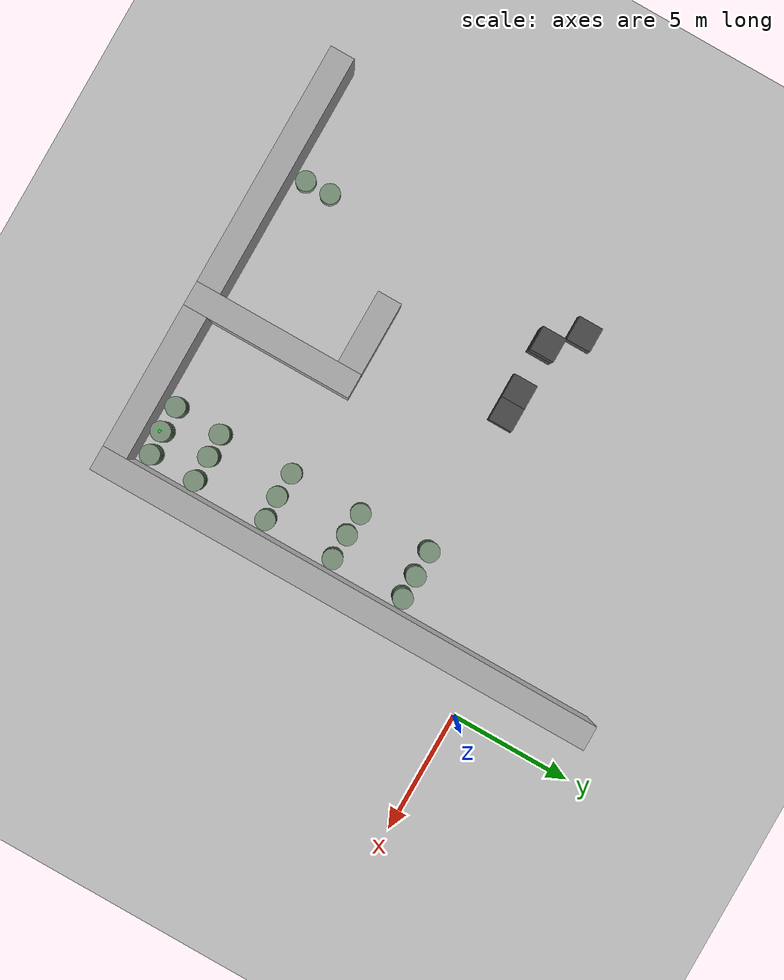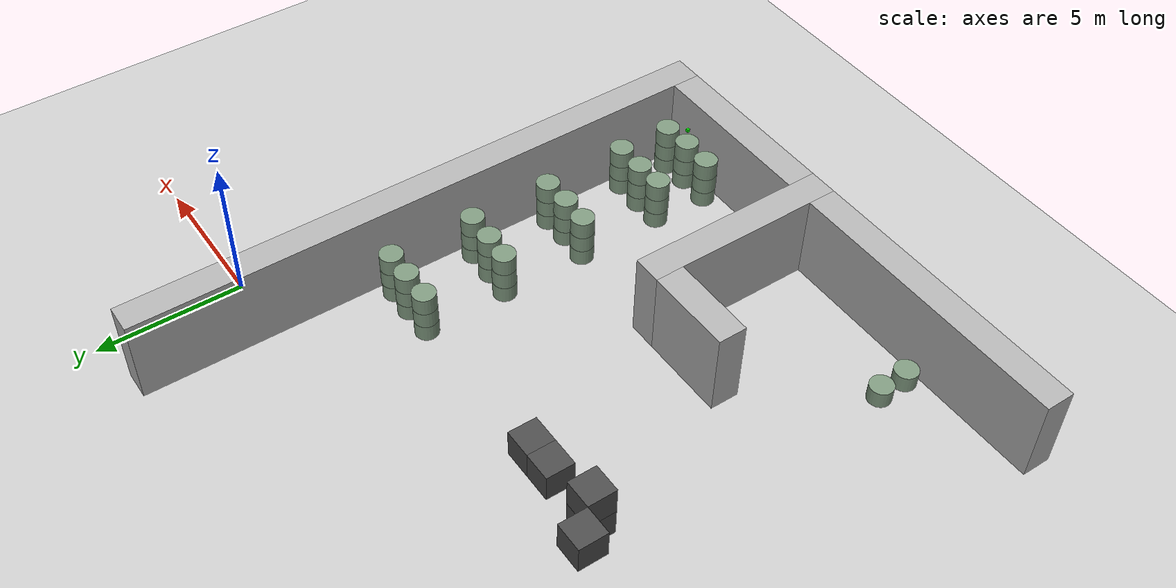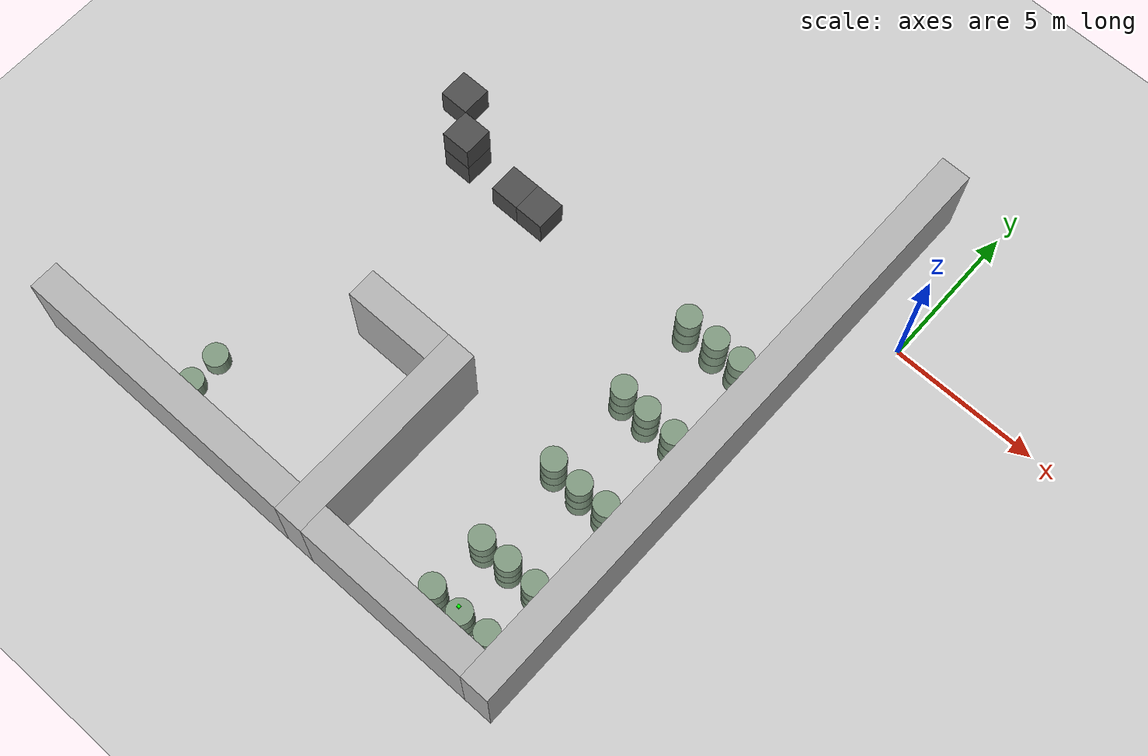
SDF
<sdf version="1.6">
 <world name="default">
  <model name="wall_2">
   <pose frame="sim_world">-9.0 -13.0 1.5 0 0 0</pose>
   <static>True</static>
   <link name="wall_2_link">
    <inertial>
     <mass>100</mass>
     <inertia>
      <ixx>0.166667</ixx>
      <ixy>0</ixy>
      <ixz>0</ixz>
      <iyy>0.166667</iyy>
      <iyz>0</iyz>
      <izz>0.166667</izz>
     </inertia>
    </inertial>
    <collision name="wall_2_collision">
     <geometry><box><size>1.0 7.0 3.0</size></box></geometry>
     <max_contacts>100</max_contacts>
    </collision>
    <visual name="wall_2_visual">
     <geometry><box><size>1.0 7.0 3.0</size></box></geometry>
     <material><ambient>0.7 0.7 0.7 1</ambient><diffuse>0.7 0.7 0.7 1</diffuse></material>
    </visual>
   </link>
  </model>
  <model name="wall_4">
   <pose frame="sim_world">-2.0 -6.0 1.5 0 0 0</pose>
   <static>True</static>
   <link name="wall_4_link">
    <inertial>
     <mass>100</mass>
     <inertia>
      <ixx>0.166667</ixx>
      <ixy>0</ixy>
      <ixz>0</ixz>
      <iyy>0.166667</iyy>
      <iyz>0</iyz>
      <izz>0.166667</izz>
     </inertia>
    </inertial>
    <collision name="wall_4_collision">
     <geometry><box><size>1.0 21.0 3.0</size></box></geometry>
     <max_contacts>100</max_contacts>
    </collision>
    <visual name="wall_4_visual">
     <geometry><box><size>1.0 21.0 3.0</size></box></geometry>
     <material><ambient>0.7 0.7 0.7 1</ambient><diffuse>0.7 0.7 0.7 1</diffuse></material>
    </visual>
   </link>
  </model>
  <model name="wall_5">
   <pose frame="sim_world">-14.5 -16.0 1.5 0 0 0</pose>
   <static>True</static>
   <link name="wall_5_link">
    <inertial>
     <mass>100</mass>
     <inertia>
      <ixx>0.166667</ixx>
      <ixy>0</ixy>
      <ixz>0</ixz>
      <iyy>0.166667</iyy>
      <iyz>0</iyz>
      <izz>0.166667</izz>
     </inertia>
    </inertial>
    <collision name="wall_5_collision">
     <geometry><box><size>10.0 1.0 3.0</size></box></geometry>
     <max_contacts>100</max_contacts>
    </collision>
    <visual name="wall_5_visual">
     <geometry><box><size>10.0 1.0 3.0</size></box></geometry>
     <material><ambient>0.7 0.7 0.7 1</ambient><diffuse>0.7 0.7 0.7 1</diffuse></material>
    </visual>
   </link>
  </model>
  <model name="wall_6">
   <pose frame="sim_world">-5.5 -16.0 1.5 0 0 0</pose>
   <static>True</static>
   <link name="wall_6_link">
    <inertial>
     <mass>100</mass>
     <inertia>
      <ixx>0.166667</ixx>
      <ixy>0</ixy>
      <ixz>0</ixz>
      <iyy>0.166667</iyy>
      <iyz>0</iyz>
      <izz>0.166667</izz>
     </inertia>
    </inertial>
    <collision name="wall_6_collision">
     <geometry><box><size>6.0 1.0 3.0</size></box></geometry>
     <max_contacts>100</max_contacts>
    </collision>
    <visual name="wall_6_visual">
     <geometry><box><size>6.0 1.0 3.0</size></box></geometry>
     <material><ambient>0.7 0.7 0.7 1</ambient><diffuse>0.7 0.7 0.7 1</diffuse></material>
    </visual>
   </link>
  </model>
  <model name="wall_8">
   <pose frame="sim_world">-11.0 -10.0 1.5 0 0 0</pose>
   <static>True</static>
   <link name="wall_8_link">
    <inertial>
     <mass>100</mass>
     <inertia>
      <ixx>0.166667</ixx>
      <ixy>0</ixy>
      <ixz>0</ixz>
      <iyy>0.166667</iyy>
      <iyz>0</iyz>
      <izz>0.166667</izz>
     </inertia>
    </inertial>
    <collision name="wall_8_collision">
     <geometry><box><size>3.0 1.0 3.0</size></box></geometry>
     <max_contacts>100</max_contacts>
    </collision>
    <visual name="wall_8_visual">
     <geometry><box><size>3.0 1.0 3.0</size></box></geometry>
     <material><ambient>0.7 0.7 0.7 1</ambient><diffuse>0.7 0.7 0.7 1</diffuse></material>
    </visual>
   </link>
  </model>
  <model name="box_33">
   <pose frame="sim_world">-15.0 -3.0 1.5 0 -0 0</pose>
   <static>True</static>
   <link name="box_33_link">
    <inertial>
     <mass>100</mass>
     <inertia>
      <ixx>0.166667</ixx>
      <ixy>0</ixy>
      <ixz>0</ixz>
      <iyy>0.166667</iyy>
      <iyz>0</iyz>
      <izz>0.166667</izz>
     </inertia>
    </inertial>
    <collision name="box_33_collision">
     <geometry><box><size>1.0 1.0 1.0</size></box></geometry>
     <max_contacts>100</max_contacts>
    </collision>
    <visual name="box_33_visual">
     <geometry><box><size>1.0 1.0 1.0</size></box></geometry>
     <material><ambient>0.3 0.3 0.3 1</ambient><diffuse>0.3 0.3 0.3 1</diffuse></material>
    </visual>
   </link>
  </model>
  <model name="box_40">
   <pose frame="sim_world">-14.0 -4.0 0.5 0 -0 0</pose>
   <static>True</static>
   <link name="box_40_link">
    <inertial>
     <mass>100</mass>
     <inertia>
      <ixx>0.166667</ixx>
      <ixy>0</ixy>
      <ixz>0</ixz>
      <iyy>0.166667</iyy>
      <iyz>0</iyz>
      <izz>0.166667</izz>
     </inertia>
    </inertial>
    <collision name="box_40_collision">
     <geometry><box><size>1.0 1.0 1.0</size></box></geometry>
     <max_contacts>100</max_contacts>
    </collision>
    <visual name="box_40_visual">
     <geometry><box><size>1.0 1.0 1.0</size></box></geometry>
     <material><ambient>0.3 0.3 0.3 1</ambient><diffuse>0.3 0.3 0.3 1</diffuse></material>
    </visual>
   </link>
  </model>
  <model name="box_41">
   <pose frame="sim_world">-14.0 -4.0 1.5 0 -0 0</pose>
   <static>True</static>
   <link name="box_41_link">
    <inertial>
     <mass>100</mass>
     <inertia>
      <ixx>0.166667</ixx>
      <ixy>0</ixy>
      <ixz>0</ixz>
      <iyy>0.166667</iyy>
      <iyz>0</iyz>
      <izz>0.166667</izz>
     </inertia>
    </inertial>
    <collision name="box_41_collision">
     <geometry><box><size>1.0 1.0 1.0</size></box></geometry>
     <max_contacts>100</max_contacts>
    </collision>
    <visual name="box_41_visual">
     <geometry><box><size>1.0 1.0 1.0</size></box></geometry>
     <material><ambient>0.3 0.3 0.3 1</ambient><diffuse>0.3 0.3 0.3 1</diffuse></material>
    </visual>
   </link>
  </model>
  <model name="box_50">
   <pose frame="sim_world">-12.0 -4.0 0.5 0 -0 0</pose>
   <static>True</static>
   <link name="box_50_link">
    <inertial>
     <mass>100</mass>
     <inertia>
      <ixx>0.166667</ixx>
      <ixy>0</ixy>
      <ixz>0</ixz>
      <iyy>0.166667</iyy>
      <iyz>0</iyz>
      <izz>0.166667</izz>
     </inertia>
    </inertial>
    <collision name="box_50_collision">
     <geometry><box><size>1.0 1.0 1.0</size></box></geometry>
     <max_contacts>100</max_contacts>
    </collision>
    <visual name="box_50_visual">
     <geometry><box><size>1.0 1.0 1.0</size></box></geometry>
     <material><ambient>0.3 0.3 0.3 1</ambient><diffuse>0.3 0.3 0.3 1</diffuse></material>
    </visual>
   </link>
  </model>
  <model name="box_55">
   <pose frame="sim_world">-11.0 -4.0 0.5 0 -0 0</pose>
   <static>True</static>
   <link name="box_55_link">
    <inertial>
     <mass>100</mass>
     <inertia>
      <ixx>0.166667</ixx>
      <ixy>0</ixy>
      <ixz>0</ixz>
      <iyy>0.166667</iyy>
      <iyz>0</iyz>
      <izz>0.166667</izz>
     </inertia>
    </inertial>
    <collision name="box_55_collision">
     <geometry><box><size>1.0 1.0 1.0</size></box></geometry>
     <max_contacts>100</max_contacts>
    </collision>
    <visual name="box_55_visual">
     <geometry><box><size>1.0 1.0 1.0</size></box></geometry>
     <material><ambient>0.3 0.3 0.3 1</ambient><diffuse>0.3 0.3 0.3 1</diffuse></material>
    </visual>
   </link>
  </model>
  <model name="cylinder_39">
   <pose frame="sim_world">-14.9642279872 -15.0391567686 0.3 0 -0 0</pose>
   <static>True</static>
   <link name="cylinder_39_link">
    <inertial>
     <mass>100</mass>
     <inertia><ixx>0.145833</ixx><ixy>0</ixy><ixz>0</ixz><iyy>0.145833</iyy><iyz>0</iyz><izz>0.125</izz></inertia>
    </inertial>
    <collision name="cylinder_39_collision">
     <geometry><cylinder><length>0.6</length><radius>0.4</radius></cylinder></geometry>
     <max_contacts>100</max_contacts>
    </collision>
    <visual name="cylinder_39_visual">
     <geometry><cylinder><length>0.6</length><radius>0.4</radius></cylinder></geometry>
     <material><ambient>0.5 0.6 0.5 1</ambient><diffuse>0.5 0.6 0.5 1</diffuse></material>
    </visual>
   </link>
  </model>
  <model name="cylinder_40">
   <pose frame="sim_world">-14.9992538087 -13.993198677 0.3 0 -0 0</pose>
   <static>True</static>
   <link name="cylinder_40_link">
    <inertial>
     <mass>100</mass>
     <inertia><ixx>0.145833</ixx><ixy>0</ixy><ixz>0</ixz><iyy>0.145833</iyy><iyz>0</iyz><izz>0.125</izz></inertia>
    </inertial>
    <collision name="cylinder_40_collision">
     <geometry><cylinder><length>0.6</length><radius>0.4</radius></cylinder></geometry>
     <max_contacts>100</max_contacts>
    </collision>
    <visual name="cylinder_40_visual">
     <geometry><cylinder><length>0.6</length><radius>0.4</radius></cylinder></geometry>
     <material><ambient>0.5 0.6 0.5 1</ambient><diffuse>0.5 0.6 0.5 1</diffuse></material>
    </visual>
   </link>
  </model>
  <model name="cylinder_54">
   <pose frame="sim_world">-5.03857748417 -15.0002102983 0.3 0 -0 0</pose>
   <static>True</static>
   <link name="cylinder_54_link">
    <inertial>
     <mass>100</mass>
     <inertia><ixx>0.145833</ixx><ixy>0</ixy><ixz>0</ixz><iyy>0.145833</iyy><iyz>0</iyz><izz>0.125</izz></inertia>
    </inertial>
    <collision name="cylinder_54_collision">
     <geometry><cylinder><length>0.6</length><radius>0.4</radius></cylinder></geometry>
     <max_contacts>100</max_contacts>
    </collision>
    <visual name="cylinder_54_visual">
     <geometry><cylinder><length>0.6</length><radius>0.4</radius></cylinder></geometry>
     <material><ambient>0.5 0.6 0.5 1</ambient><diffuse>0.5 0.6 0.5 1</diffuse></material>
    </visual>
   </link>
  </model>
  <model name="cylinder_55">
   <pose frame="sim_world">-5.05000649668 -15.0002626581 0.9 0 -0 0</pose>
   <static>True</static>
   <link name="cylinder_55_link">
    <inertial>
     <mass>100</mass>
     <inertia><ixx>0.145833</ixx><ixy>0</ixy><ixz>0</ixz><iyy>0.145833</iyy><iyz>0</iyz><izz>0.125</izz></inertia>
    </inertial>
    <collision name="cylinder_55_collision">
     <geometry><cylinder><length>0.6</length><radius>0.4</radius></cylinder></geometry>
     <max_contacts>100</max_contacts>
    </collision>
    <visual name="cylinder_55_visual">
     <geometry><cylinder><length>0.6</length><radius>0.4</radius></cylinder></geometry>
     <material><ambient>0.5 0.6 0.5 1</ambient><diffuse>0.5 0.6 0.5 1</diffuse></material>
    </visual>
   </link>
  </model>
  <model name="cylinder_56">
   <pose frame="sim_world">-5.04231013674 -14.9907757443 1.5 0 -0 0</pose>
   <static>True</static>
   <link name="cylinder_56_link">
    <inertial>
     <mass>100</mass>
     <inertia><ixx>0.145833</ixx><ixy>0</ixy><ixz>0</ixz><iyy>0.145833</iyy><iyz>0</iyz><izz>0.125</izz></inertia>
    </inertial>
    <collision name="cylinder_56_collision">
     <geometry><cylinder><length>0.6</length><radius>0.4</radius></cylinder></geometry>
     <max_contacts>100</max_contacts>
    </collision>
    <visual name="cylinder_56_visual">
     <geometry><cylinder><length>0.6</length><radius>0.4</radius></cylinder></geometry>
     <material><ambient>0.5 0.6 0.5 1</ambient><diffuse>0.5 0.6 0.5 1</diffuse></material>
    </visual>
   </link>
  </model>
  <model name="cylinder_57">
   <pose frame="sim_world">-4.96721055295 -13.0388129015 0.3 0 -0 0</pose>
   <static>True</static>
   <link name="cylinder_57_link">
    <inertial>
     <mass>100</mass>
     <inertia><ixx>0.145833</ixx><ixy>0</ixy><ixz>0</ixz><iyy>0.145833</iyy><iyz>0</iyz><izz>0.125</izz></inertia>
    </inertial>
    <collision name="cylinder_57_collision">
     <geometry><cylinder><length>0.6</length><radius>0.4</radius></cylinder></geometry>
     <max_contacts>100</max_contacts>
    </collision>
    <visual name="cylinder_57_visual">
     <geometry><cylinder><length>0.6</length><radius>0.4</radius></cylinder></geometry>
     <material><ambient>0.5 0.6 0.5 1</ambient><diffuse>0.5 0.6 0.5 1</diffuse></material>
    </visual>
   </link>
  </model>
  <model name="cylinder_58">
   <pose frame="sim_world">-4.96621971312 -13.0462987798 0.9 0 -0 0</pose>
   <static>True</static>
   <link name="cylinder_58_link">
    <inertial>
     <mass>100</mass>
     <inertia><ixx>0.145833</ixx><ixy>0</ixy><ixz>0</ixz><iyy>0.145833</iyy><iyz>0</iyz><izz>0.125</izz></inertia>
    </inertial>
    <collision name="cylinder_58_collision">
     <geometry><cylinder><length>0.6</length><radius>0.4</radius></cylinder></geometry>
     <max_contacts>100</max_contacts>
    </collision>
    <visual name="cylinder_58_visual">
     <geometry><cylinder><length>0.6</length><radius>0.4</radius></cylinder></geometry>
     <material><ambient>0.5 0.6 0.5 1</ambient><diffuse>0.5 0.6 0.5 1</diffuse></material>
    </visual>
   </link>
  </model>
  <model name="cylinder_59">
   <pose frame="sim_world">-4.96397313096 -13.047413527 1.5 0 -0 0</pose>
   <static>True</static>
   <link name="cylinder_59_link">
    <inertial>
     <mass>100</mass>
     <inertia><ixx>0.145833</ixx><ixy>0</ixy><ixz>0</ixz><iyy>0.145833</iyy><iyz>0</iyz><izz>0.125</izz></inertia>
    </inertial>
    <collision name="cylinder_59_collision">
     <geometry><cylinder><length>0.6</length><radius>0.4</radius></cylinder></geometry>
     <max_contacts>100</max_contacts>
    </collision>
    <visual name="cylinder_59_visual">
     <geometry><cylinder><length>0.6</length><radius>0.4</radius></cylinder></geometry>
     <material><ambient>0.5 0.6 0.5 1</ambient><diffuse>0.5 0.6 0.5 1</diffuse></material>
    </visual>
   </link>
  </model>
  <model name="cylinder_60">
   <pose frame="sim_world">-5.0161968922 -9.96388049397 0.3 0 -0 0</pose>
   <static>True</static>
   <link name="cylinder_60_link">
    <inertial>
     <mass>100</mass>
     <inertia><ixx>0.145833</ixx><ixy>0</ixy><ixz>0</ixz><iyy>0.145833</iyy><iyz>0</iyz><izz>0.125</izz></inertia>
    </inertial>
    <collision name="cylinder_60_collision">
     <geometry><cylinder><length>0.6</length><radius>0.4</radius></cylinder></geometry>
     <max_contacts>100</max_contacts>
    </collision>
    <visual name="cylinder_60_visual">
     <geometry><cylinder><length>0.6</length><radius>0.4</radius></cylinder></geometry>
     <material><ambient>0.5 0.6 0.5 1</ambient><diffuse>0.5 0.6 0.5 1</diffuse></material>
    </visual>
   </link>
  </model>
  <model name="cylinder_61">
   <pose frame="sim_world">-5.01731107323 -9.96693052548 0.9 0 -0 0</pose>
   <static>True</static>
   <link name="cylinder_61_link">
    <inertial>
     <mass>100</mass>
     <inertia><ixx>0.145833</ixx><ixy>0</ixy><ixz>0</ixz><iyy>0.145833</iyy><iyz>0</iyz><izz>0.125</izz></inertia>
    </inertial>
    <collision name="cylinder_61_collision">
     <geometry><cylinder><length>0.6</length><radius>0.4</radius></cylinder></geometry>
     <max_contacts>100</max_contacts>
    </collision>
    <visual name="cylinder_61_visual">
     <geometry><cylinder><length>0.6</length><radius>0.4</radius></cylinder></geometry>
     <material><ambient>0.5 0.6 0.5 1</ambient><diffuse>0.5 0.6 0.5 1</diffuse></material>
    </visual>
   </link>
  </model>
  <model name="cylinder_62">
   <pose frame="sim_world">-5.02168963032 -9.96337520874 1.5 0 -0 0</pose>
   <static>True</static>
   <link name="cylinder_62_link">
    <inertial>
     <mass>100</mass>
     <inertia><ixx>0.145833</ixx><ixy>0</ixy><ixz>0</ixz><iyy>0.145833</iyy><iyz>0</iyz><izz>0.125</izz></inertia>
    </inertial>
    <collision name="cylinder_62_collision">
     <geometry><cylinder><length>0.6</length><radius>0.4</radius></cylinder></geometry>
     <max_contacts>100</max_contacts>
    </collision>
    <visual name="cylinder_62_visual">
     <geometry><cylinder><length>0.6</length><radius>0.4</radius></cylinder></geometry>
     <material><ambient>0.5 0.6 0.5 1</ambient><diffuse>0.5 0.6 0.5 1</diffuse></material>
    </visual>
   </link>
  </model>
  <model name="cylinder_63">
   <pose frame="sim_world">-4.99879742853 -6.95224258028 0.3 0 -0 0</pose>
   <static>True</static>
   <link name="cylinder_63_link">
    <inertial>
     <mass>100</mass>
     <inertia><ixx>0.145833</ixx><ixy>0</ixy><ixz>0</ixz><iyy>0.145833</iyy><iyz>0</iyz><izz>0.125</izz></inertia>
    </inertial>
    <collision name="cylinder_63_collision">
     <geometry><cylinder><length>0.6</length><radius>0.4</radius></cylinder></geometry>
     <max_contacts>100</max_contacts>
    </collision>
    <visual name="cylinder_63_visual">
     <geometry><cylinder><length>0.6</length><radius>0.4</radius></cylinder></geometry>
     <material><ambient>0.5 0.6 0.5 1</ambient><diffuse>0.5 0.6 0.5 1</diffuse></material>
    </visual>
   </link>
  </model>
  <model name="cylinder_64">
   <pose frame="sim_world">-4.98465139193 -6.95228023507 0.9 0 -0 0</pose>
   <static>True</static>
   <link name="cylinder_64_link">
    <inertial>
     <mass>100</mass>
     <inertia><ixx>0.145833</ixx><ixy>0</ixy><ixz>0</ixz><iyy>0.145833</iyy><iyz>0</iyz><izz>0.125</izz></inertia>
    </inertial>
    <collision name="cylinder_64_collision">
     <geometry><cylinder><length>0.6</length><radius>0.4</radius></cylinder></geometry>
     <max_contacts>100</max_contacts>
    </collision>
    <visual name="cylinder_64_visual">
     <geometry><cylinder><length>0.6</length><radius>0.4</radius></cylinder></geometry>
     <material><ambient>0.5 0.6 0.5 1</ambient><diffuse>0.5 0.6 0.5 1</diffuse></material>
    </visual>
   </link>
  </model>
  <model name="cylinder_65">
   <pose frame="sim_world">-4.98913408012 -6.95434660977 1.5 0 -0 0</pose>
   <static>True</static>
   <link name="cylinder_65_link">
    <inertial>
     <mass>100</mass>
     <inertia><ixx>0.145833</ixx><ixy>0</ixy><ixz>0</ixz><iyy>0.145833</iyy><iyz>0</iyz><izz>0.125</izz></inertia>
    </inertial>
    <collision name="cylinder_65_collision">
     <geometry><cylinder><length>0.6</length><radius>0.4</radius></cylinder></geometry>
     <max_contacts>100</max_contacts>
    </collision>
    <visual name="cylinder_65_visual">
     <geometry><cylinder><length>0.6</length><radius>0.4</radius></cylinder></geometry>
     <material><ambient>0.5 0.6 0.5 1</ambient><diffuse>0.5 0.6 0.5 1</diffuse></material>
    </visual>
   </link>
  </model>
  <model name="cylinder_66">
   <pose frame="sim_world">-5.02812958443 -4.01003041959 0.3 0 -0 0</pose>
   <static>True</static>
   <link name="cylinder_66_link">
    <inertial>
     <mass>100</mass>
     <inertia><ixx>0.145833</ixx><ixy>0</ixy><ixz>0</ixz><iyy>0.145833</iyy><iyz>0</iyz><izz>0.125</izz></inertia>
    </inertial>
    <collision name="cylinder_66_collision">
     <geometry><cylinder><length>0.6</length><radius>0.4</radius></cylinder></geometry>
     <max_contacts>100</max_contacts>
    </collision>
    <visual name="cylinder_66_visual">
     <geometry><cylinder><length>0.6</length><radius>0.4</radius></cylinder></geometry>
     <material><ambient>0.5 0.6 0.5 1</ambient><diffuse>0.5 0.6 0.5 1</diffuse></material>
    </visual>
   </link>
  </model>
  <model name="cylinder_67">
   <pose frame="sim_world">-5.02740755186 -4.00658309086 0.9 0 -0 0</pose>
   <static>True</static>
   <link name="cylinder_67_link">
    <inertial>
     <mass>100</mass>
     <inertia><ixx>0.145833</ixx><ixy>0</ixy><ixz>0</ixz><iyy>0.145833</iyy><iyz>0</iyz><izz>0.125</izz></inertia>
    </inertial>
    <collision name="cylinder_67_collision">
     <geometry><cylinder><length>0.6</length><radius>0.4</radius></cylinder></geometry>
     <max_contacts>100</max_contacts>
    </collision>
    <visual name="cylinder_67_visual">
     <geometry><cylinder><length>0.6</length><radius>0.4</radius></cylinder></geometry>
     <material><ambient>0.5 0.6 0.5 1</ambient><diffuse>0.5 0.6 0.5 1</diffuse></material>
    </visual>
   </link>
  </model>
  <model name="cylinder_68">
   <pose frame="sim_world">-5.03275978574 -3.99459367111 1.5 0 -0 0</pose>
   <static>True</static>
   <link name="cylinder_68_link">
    <inertial>
     <mass>100</mass>
     <inertia><ixx>0.145833</ixx><ixy>0</ixy><ixz>0</ixz><iyy>0.145833</iyy><iyz>0</iyz><izz>0.125</izz></inertia>
    </inertial>
    <collision name="cylinder_68_collision">
     <geometry><cylinder><length>0.6</length><radius>0.4</radius></cylinder></geometry>
     <max_contacts>100</max_contacts>
    </collision>
    <visual name="cylinder_68_visual">
     <geometry><cylinder><length>0.6</length><radius>0.4</radius></cylinder></geometry>
     <material><ambient>0.5 0.6 0.5 1</ambient><diffuse>0.5 0.6 0.5 1</diffuse></material>
    </visual>
   </link>
  </model>
  <model name="cylinder_96">
   <pose frame="sim_world">-3.97434715581 -15.0098099933 0.3 0 -0 0</pose>
   <static>True</static>
   <link name="cylinder_96_link">
    <inertial>
     <mass>100</mass>
     <inertia><ixx>0.145833</ixx><ixy>0</ixy><ixz>0</ixz><iyy>0.145833</iyy><iyz>0</iyz><izz>0.125</izz></inertia>
    </inertial>
    <collision name="cylinder_96_collision">
     <geometry><cylinder><length>0.6</length><radius>0.4</radius></cylinder></geometry>
     <max_contacts>100</max_contacts>
    </collision>
    <visual name="cylinder_96_visual">
     <geometry><cylinder><length>0.6</length><radius>0.4</radius></cylinder></geometry>
     <material><ambient>0.5 0.6 0.5 1</ambient><diffuse>0.5 0.6 0.5 1</diffuse></material>
    </visual>
   </link>
   <model name="radiation_source_cylinder_96">
    <static>true</static>
    <link name="link_radiation_source_cylinder_96">
     <visual name="visual_radiation_source_cylinder_96_0">
      <geometry><box><size>0.1 0.1 0.1</size></box></geometry>
      <material><ambient>1 0.0  0 1.0</ambient><diffuse>1 0.0  0 1.0</diffuse></material>
     </visual>
     <visual name="visual_radiation_source_cylinder_96_1">
      <pose>0 0 2.0 0 0 0</pose>
      <geometry><box><size>0.1 0.1 0.1</size></box></geometry>
      <material><ambient>0 1.0  0 1.0</ambient><diffuse>0 1.0  0 1.0</diffuse></material>
     </visual>
     <sensor name="radiation_source_cylinder_96" type="radiation_source">
      <always_on>1</always_on>
      <update_rate>1.0</update_rate>
      <topic>source_3/gamma</topic>
      <plugin filename="libradiation_source_plugin.so" name="radiation_source_plugin"/>
     </sensor>
    </link>
   </model>
  </model>
  <model name="cylinder_97">
   <pose frame="sim_world">-3.96317434991 -15.0131343072 0.9 0 -0 0</pose>
   <static>True</static>
   <link name="cylinder_97_link">
    <inertial>
     <mass>100</mass>
     <inertia><ixx>0.145833</ixx><ixy>0</ixy><ixz>0</ixz><iyy>0.145833</iyy><iyz>0</iyz><izz>0.125</izz></inertia>
    </inertial>
    <collision name="cylinder_97_collision">
     <geometry><cylinder><length>0.6</length><radius>0.4</radius></cylinder></geometry>
     <max_contacts>100</max_contacts>
    </collision>
    <visual name="cylinder_97_visual">
     <geometry><cylinder><length>0.6</length><radius>0.4</radius></cylinder></geometry>
     <material><ambient>0.5 0.6 0.5 1</ambient><diffuse>0.5 0.6 0.5 1</diffuse></material>
    </visual>
   </link>
  </model>
  <model name="cylinder_98">
   <pose frame="sim_world">-3.97127461932 -15.023205445 1.5 0 -0 0</pose>
   <static>True</static>
   <link name="cylinder_98_link">
    <inertial>
     <mass>100</mass>
     <inertia><ixx>0.145833</ixx><ixy>0</ixy><ixz>0</ixz><iyy>0.145833</iyy><iyz>0</iyz><izz>0.125</izz></inertia>
    </inertial>
    <collision name="cylinder_98_collision">
     <geometry><cylinder><length>0.6</length><radius>0.4</radius></cylinder></geometry>
     <max_contacts>100</max_contacts>
    </collision>
    <visual name="cylinder_98_visual">
     <geometry><cylinder><length>0.6</length><radius>0.4</radius></cylinder></geometry>
     <material><ambient>0.5 0.6 0.5 1</ambient><diffuse>0.5 0.6 0.5 1</diffuse></material>
    </visual>
   </link>
  </model>
  <model name="cylinder_99">
   <pose frame="sim_world">-4.02600683005 -13.0129427664 0.3 0 -0 0</pose>
   <static>True</static>
   <link name="cylinder_99_link">
    <inertial>
     <mass>100</mass>
     <inertia><ixx>0.145833</ixx><ixy>0</ixy><ixz>0</ixz><iyy>0.145833</iyy><iyz>0</iyz><izz>0.125</izz></inertia>
    </inertial>
    <collision name="cylinder_99_collision">
     <geometry><cylinder><length>0.6</length><radius>0.4</radius></cylinder></geometry>
     <max_contacts>100</max_contacts>
    </collision>
    <visual name="cylinder_99_visual">
     <geometry><cylinder><length>0.6</length><radius>0.4</radius></cylinder></geometry>
     <material><ambient>0.5 0.6 0.5 1</ambient><diffuse>0.5 0.6 0.5 1</diffuse></material>
    </visual>
   </link>
  </model>
  <model name="cylinder_100">
   <pose frame="sim_world">-4.03086776335 -13.0126779504 0.9 0 -0 0</pose>
   <static>True</static>
   <link name="cylinder_100_link">
    <inertial>
     <mass>100</mass>
     <inertia><ixx>0.145833</ixx><ixy>0</ixy><ixz>0</ixz><iyy>0.145833</iyy><iyz>0</iyz><izz>0.125</izz></inertia>
    </inertial>
    <collision name="cylinder_100_collision">
     <geometry><cylinder><length>0.6</length><radius>0.4</radius></cylinder></geometry>
     <max_contacts>100</max_contacts>
    </collision>
    <visual name="cylinder_100_visual">
     <geometry><cylinder><length>0.6</length><radius>0.4</radius></cylinder></geometry>
     <material><ambient>0.5 0.6 0.5 1</ambient><diffuse>0.5 0.6 0.5 1</diffuse></material>
    </visual>
   </link>
  </model>
  <model name="cylinder_101">
   <pose frame="sim_world">-4.01185579684 -13.0079262709 1.5 0 -0 0</pose>
   <static>True</static>
   <link name="cylinder_101_link">
    <inertial>
     <mass>100</mass>
     <inertia><ixx>0.145833</ixx><ixy>0</ixy><ixz>0</ixz><iyy>0.145833</iyy><iyz>0</iyz><izz>0.125</izz></inertia>
    </inertial>
    <collision name="cylinder_101_collision">
     <geometry><cylinder><length>0.6</length><radius>0.4</radius></cylinder></geometry>
     <max_contacts>100</max_contacts>
    </collision>
    <visual name="cylinder_101_visual">
     <geometry><cylinder><length>0.6</length><radius>0.4</radius></cylinder></geometry>
     <material><ambient>0.5 0.6 0.5 1</ambient><diffuse>0.5 0.6 0.5 1</diffuse></material>
    </visual>
   </link>
  </model>
  <model name="cylinder_102">
   <pose frame="sim_world">-3.98188915721 -10.013250989 0.3 0 -0 0</pose>
   <static>True</static>
   <link name="cylinder_102_link">
    <inertial>
     <mass>100</mass>
     <inertia><ixx>0.145833</ixx><ixy>0</ixy><ixz>0</ixz><iyy>0.145833</iyy><iyz>0</iyz><izz>0.125</izz></inertia>
    </inertial>
    <collision name="cylinder_102_collision">
     <geometry><cylinder><length>0.6</length><radius>0.4</radius></cylinder></geometry>
     <max_contacts>100</max_contacts>
    </collision>
    <visual name="cylinder_102_visual">
     <geometry><cylinder><length>0.6</length><radius>0.4</radius></cylinder></geometry>
     <material><ambient>0.5 0.6 0.5 1</ambient><diffuse>0.5 0.6 0.5 1</diffuse></material>
    </visual>
   </link>
  </model>
  <model name="cylinder_103">
   <pose frame="sim_world">-3.99733306049 -10.0159751063 0.9 0 -0 0</pose>
   <static>True</static>
   <link name="cylinder_103_link">
    <inertial>
     <mass>100</mass>
     <inertia><ixx>0.145833</ixx><ixy>0</ixy><ixz>0</ixz><iyy>0.145833</iyy><iyz>0</iyz><izz>0.125</izz></inertia>
    </inertial>
    <collision name="cylinder_103_collision">
     <geometry><cylinder><length>0.6</length><radius>0.4</radius></cylinder></geometry>
     <max_contacts>100</max_contacts>
    </collision>
    <visual name="cylinder_103_visual">
     <geometry><cylinder><length>0.6</length><radius>0.4</radius></cylinder></geometry>
     <material><ambient>0.5 0.6 0.5 1</ambient><diffuse>0.5 0.6 0.5 1</diffuse></material>
    </visual>
   </link>
  </model>
  <model name="cylinder_104">
   <pose frame="sim_world">-3.9968707419 -10.0056302711 1.5 0 -0 0</pose>
   <static>True</static>
   <link name="cylinder_104_link">
    <inertial>
     <mass>100</mass>
     <inertia><ixx>0.145833</ixx><ixy>0</ixy><ixz>0</ixz><iyy>0.145833</iyy><iyz>0</iyz><izz>0.125</izz></inertia>
    </inertial>
    <collision name="cylinder_104_collision">
     <geometry><cylinder><length>0.6</length><radius>0.4</radius></cylinder></geometry>
     <max_contacts>100</max_contacts>
    </collision>
    <visual name="cylinder_104_visual">
     <geometry><cylinder><length>0.6</length><radius>0.4</radius></cylinder></geometry>
     <material><ambient>0.5 0.6 0.5 1</ambient><diffuse>0.5 0.6 0.5 1</diffuse></material>
    </visual>
   </link>
  </model>
  <model name="cylinder_105">
   <pose frame="sim_world">-4.03727910733 -7.01864410838 0.3 0 -0 0</pose>
   <static>True</static>
   <link name="cylinder_105_link">
    <inertial>
     <mass>100</mass>
     <inertia><ixx>0.145833</ixx><ixy>0</ixy><ixz>0</ixz><iyy>0.145833</iyy><iyz>0</iyz><izz>0.125</izz></inertia>
    </inertial>
    <collision name="cylinder_105_collision">
     <geometry><cylinder><length>0.6</length><radius>0.4</radius></cylinder></geometry>
     <max_contacts>100</max_contacts>
    </collision>
    <visual name="cylinder_105_visual">
     <geometry><cylinder><length>0.6</length><radius>0.4</radius></cylinder></geometry>
     <material><ambient>0.5 0.6 0.5 1</ambient><diffuse>0.5 0.6 0.5 1</diffuse></material>
    </visual>
   </link>
  </model>
  <model name="cylinder_106">
   <pose frame="sim_world">-4.02993855264 -7.01563548362 0.9 0 -0 0</pose>
   <static>True</static>
   <link name="cylinder_106_link">
    <inertial>
     <mass>100</mass>
     <inertia><ixx>0.145833</ixx><ixy>0</ixy><ixz>0</ixz><iyy>0.145833</iyy><iyz>0</iyz><izz>0.125</izz></inertia>
    </inertial>
    <collision name="cylinder_106_collision">
     <geometry><cylinder><length>0.6</length><radius>0.4</radius></cylinder></geometry>
     <max_contacts>100</max_contacts>
    </collision>
    <visual name="cylinder_106_visual">
     <geometry><cylinder><length>0.6</length><radius>0.4</radius></cylinder></geometry>
     <material><ambient>0.5 0.6 0.5 1</ambient><diffuse>0.5 0.6 0.5 1</diffuse></material>
    </visual>
   </link>
  </model>
  <model name="cylinder_107">
   <pose frame="sim_world">-4.04279981285 -7.00427760971 1.5 0 -0 0</pose>
   <static>True</static>
   <link name="cylinder_107_link">
    <inertial>
     <mass>100</mass>
     <inertia><ixx>0.145833</ixx><ixy>0</ixy><ixz>0</ixz><iyy>0.145833</iyy><iyz>0</iyz><izz>0.125</izz></inertia>
    </inertial>
    <collision name="cylinder_107_collision">
     <geometry><cylinder><length>0.6</length><radius>0.4</radius></cylinder></geometry>
     <max_contacts>100</max_contacts>
    </collision>
    <visual name="cylinder_107_visual">
     <geometry><cylinder><length>0.6</length><radius>0.4</radius></cylinder></geometry>
     <material><ambient>0.5 0.6 0.5 1</ambient><diffuse>0.5 0.6 0.5 1</diffuse></material>
    </visual>
   </link>
  </model>
  <model name="cylinder_108">
   <pose frame="sim_world">-3.97730473726 -3.99942619545 0.3 0 -0 0</pose>
   <static>True</static>
   <link name="cylinder_108_link">
    <inertial>
     <mass>100</mass>
     <inertia><ixx>0.145833</ixx><ixy>0</ixy><ixz>0</ixz><iyy>0.145833</iyy><iyz>0</iyz><izz>0.125</izz></inertia>
    </inertial>
    <collision name="cylinder_108_collision">
     <geometry><cylinder><length>0.6</length><radius>0.4</radius></cylinder></geometry>
     <max_contacts>100</max_contacts>
    </collision>
    <visual name="cylinder_108_visual">
     <geometry><cylinder><length>0.6</length><radius>0.4</radius></cylinder></geometry>
     <material><ambient>0.5 0.6 0.5 1</ambient><diffuse>0.5 0.6 0.5 1</diffuse></material>
    </visual>
   </link>
  </model>
  <model name="cylinder_109">
   <pose frame="sim_world">-3.96981555724 -3.99259190289 0.9 0 -0 0</pose>
   <static>True</static>
   <link name="cylinder_109_link">
    <inertial>
     <mass>100</mass>
     <inertia><ixx>0.145833</ixx><ixy>0</ixy><ixz>0</ixz><iyy>0.145833</iyy><iyz>0</iyz><izz>0.125</izz></inertia>
    </inertial>
    <collision name="cylinder_109_collision">
     <geometry><cylinder><length>0.6</length><radius>0.4</radius></cylinder></geometry>
     <max_contacts>100</max_contacts>
    </collision>
    <visual name="cylinder_109_visual">
     <geometry><cylinder><length>0.6</length><radius>0.4</radius></cylinder></geometry>
     <material><ambient>0.5 0.6 0.5 1</ambient><diffuse>0.5 0.6 0.5 1</diffuse></material>
    </visual>
   </link>
  </model>
  <model name="cylinder_110">
   <pose frame="sim_world">-3.9783778329 -3.98945076786 1.5 0 -0 0</pose>
   <static>True</static>
   <link name="cylinder_110_link">
    <inertial>
     <mass>100</mass>
     <inertia><ixx>0.145833</ixx><ixy>0</ixy><ixz>0</ixz><iyy>0.145833</iyy><iyz>0</iyz><izz>0.125</izz></inertia>
    </inertial>
    <collision name="cylinder_110_collision">
     <geometry><cylinder><length>0.6</length><radius>0.4</radius></cylinder></geometry>
     <max_contacts>100</max_contacts>
    </collision>
    <visual name="cylinder_110_visual">
     <geometry><cylinder><length>0.6</length><radius>0.4</radius></cylinder></geometry>
     <material><ambient>0.5 0.6 0.5 1</ambient><diffuse>0.5 0.6 0.5 1</diffuse></material>
    </visual>
   </link>
  </model>
  <model name="cylinder_138">
   <pose frame="sim_world">-3.00667436374 -14.9494284898 0.3 0 -0 0</pose>
   <static>True</static>
   <link name="cylinder_138_link">
    <inertial>
     <mass>100</mass>
     <inertia><ixx>0.145833</ixx><ixy>0</ixy><ixz>0</ixz><iyy>0.145833</iyy><iyz>0</iyz><izz>0.125</izz></inertia>
    </inertial>
    <collision name="cylinder_138_collision">
     <geometry><cylinder><length>0.6</length><radius>0.4</radius></cylinder></geometry>
     <max_contacts>100</max_contacts>
    </collision>
    <visual name="cylinder_138_visual">
     <geometry><cylinder><length>0.6</length><radius>0.4</radius></cylinder></geometry>
     <material><ambient>0.5 0.6 0.5 1</ambient><diffuse>0.5 0.6 0.5 1</diffuse></material>
    </visual>
   </link>
  </model>
  <model name="cylinder_139">
   <pose frame="sim_world">-3.01646008534 -14.9460807494 0.9 0 -0 0</pose>
   <static>True</static>
   <link name="cylinder_139_link">
    <inertial>
     <mass>100</mass>
     <inertia><ixx>0.145833</ixx><ixy>0</ixy><ixz>0</ixz><iyy>0.145833</iyy><iyz>0</iyz><izz>0.125</izz></inertia>
    </inertial>
    <collision name="cylinder_139_collision">
     <geometry><cylinder><length>0.6</length><radius>0.4</radius></cylinder></geometry>
     <max_contacts>100</max_contacts>
    </collision>
    <visual name="cylinder_139_visual">
     <geometry><cylinder><length>0.6</length><radius>0.4</radius></cylinder></geometry>
     <material><ambient>0.5 0.6 0.5 1</ambient><diffuse>0.5 0.6 0.5 1</diffuse></material>
    </visual>
   </link>
  </model>
  <model name="cylinder_140">
   <pose frame="sim_world">-3.00443655025 -14.9443725733 1.5 0 -0 0</pose>
   <static>True</static>
   <link name="cylinder_140_link">
    <inertial>
     <mass>100</mass>
     <inertia><ixx>0.145833</ixx><ixy>0</ixy><ixz>0</ixz><iyy>0.145833</iyy><iyz>0</iyz><izz>0.125</izz></inertia>
    </inertial>
    <collision name="cylinder_140_collision">
     <geometry><cylinder><length>0.6</length><radius>0.4</radius></cylinder></geometry>
     <max_contacts>100</max_contacts>
    </collision>
    <visual name="cylinder_140_visual">
     <geometry><cylinder><length>0.6</length><radius>0.4</radius></cylinder></geometry>
     <material><ambient>0.5 0.6 0.5 1</ambient><diffuse>0.5 0.6 0.5 1</diffuse></material>
    </visual>
   </link>
  </model>
  <model name="cylinder_141">
   <pose frame="sim_world">-2.98378669334 -13.0309681433 0.3 0 -0 0</pose>
   <static>True</static>
   <link name="cylinder_141_link">
    <inertial>
     <mass>100</mass>
     <inertia><ixx>0.145833</ixx><ixy>0</ixy><ixz>0</ixz><iyy>0.145833</iyy><iyz>0</iyz><izz>0.125</izz></inertia>
    </inertial>
    <collision name="cylinder_141_collision">
     <geometry><cylinder><length>0.6</length><radius>0.4</radius></cylinder></geometry>
     <max_contacts>100</max_contacts>
    </collision>
    <visual name="cylinder_141_visual">
     <geometry><cylinder><length>0.6</length><radius>0.4</radius></cylinder></geometry>
     <material><ambient>0.5 0.6 0.5 1</ambient><diffuse>0.5 0.6 0.5 1</diffuse></material>
    </visual>
   </link>
  </model>
  <model name="cylinder_142">
   <pose frame="sim_world">-2.96900163082 -13.0297201819 0.9 0 -0 0</pose>
   <static>True</static>
   <link name="cylinder_142_link">
    <inertial>
     <mass>100</mass>
     <inertia><ixx>0.145833</ixx><ixy>0</ixy><ixz>0</ixz><iyy>0.145833</iyy><iyz>0</iyz><izz>0.125</izz></inertia>
    </inertial>
    <collision name="cylinder_142_collision">
     <geometry><cylinder><length>0.6</length><radius>0.4</radius></cylinder></geometry>
     <max_contacts>100</max_contacts>
    </collision>
    <visual name="cylinder_142_visual">
     <geometry><cylinder><length>0.6</length><radius>0.4</radius></cylinder></geometry>
     <material><ambient>0.5 0.6 0.5 1</ambient><diffuse>0.5 0.6 0.5 1</diffuse></material>
    </visual>
   </link>
  </model>
  <model name="cylinder_143">
   <pose frame="sim_world">-2.97044075444 -13.0185209899 1.5 0 -0 0</pose>
   <static>True</static>
   <link name="cylinder_143_link">
    <inertial>
     <mass>100</mass>
     <inertia><ixx>0.145833</ixx><ixy>0</ixy><ixz>0</ixz><iyy>0.145833</iyy><iyz>0</iyz><izz>0.125</izz></inertia>
    </inertial>
    <collision name="cylinder_143_collision">
     <geometry><cylinder><length>0.6</length><radius>0.4</radius></cylinder></geometry>
     <max_contacts>100</max_contacts>
    </collision>
    <visual name="cylinder_143_visual">
     <geometry><cylinder><length>0.6</length><radius>0.4</radius></cylinder></geometry>
     <material><ambient>0.5 0.6 0.5 1</ambient><diffuse>0.5 0.6 0.5 1</diffuse></material>
    </visual>
   </link>
  </model>
  <model name="cylinder_144">
   <pose frame="sim_world">-3.03006763154 -9.97629689664 0.3 0 -0 0</pose>
   <static>True</static>
   <link name="cylinder_144_link">
    <inertial>
     <mass>100</mass>
     <inertia><ixx>0.145833</ixx><ixy>0</ixy><ixz>0</ixz><iyy>0.145833</iyy><iyz>0</iyz><izz>0.125</izz></inertia>
    </inertial>
    <collision name="cylinder_144_collision">
     <geometry><cylinder><length>0.6</length><radius>0.4</radius></cylinder></geometry>
     <max_contacts>100</max_contacts>
    </collision>
    <visual name="cylinder_144_visual">
     <geometry><cylinder><length>0.6</length><radius>0.4</radius></cylinder></geometry>
     <material><ambient>0.5 0.6 0.5 1</ambient><diffuse>0.5 0.6 0.5 1</diffuse></material>
    </visual>
   </link>
  </model>
  <model name="cylinder_145">
   <pose frame="sim_world">-3.03722382602 -9.96976507608 0.9 0 -0 0</pose>
   <static>True</static>
   <link name="cylinder_145_link">
    <inertial>
     <mass>100</mass>
     <inertia><ixx>0.145833</ixx><ixy>0</ixy><ixz>0</ixz><iyy>0.145833</iyy><iyz>0</iyz><izz>0.125</izz></inertia>
    </inertial>
    <collision name="cylinder_145_collision">
     <geometry><cylinder><length>0.6</length><radius>0.4</radius></cylinder></geometry>
     <max_contacts>100</max_contacts>
    </collision>
    <visual name="cylinder_145_visual">
     <geometry><cylinder><length>0.6</length><radius>0.4</radius></cylinder></geometry>
     <material><ambient>0.5 0.6 0.5 1</ambient><diffuse>0.5 0.6 0.5 1</diffuse></material>
    </visual>
   </link>
  </model>
  <model name="cylinder_146">
   <pose frame="sim_world">-3.01864007052 -9.96437196115 1.5 0 -0 0</pose>
   <static>True</static>
   <link name="cylinder_146_link">
    <inertial>
     <mass>100</mass>
     <inertia><ixx>0.145833</ixx><ixy>0</ixy><ixz>0</ixz><iyy>0.145833</iyy><iyz>0</iyz><izz>0.125</izz></inertia>
    </inertial>
    <collision name="cylinder_146_collision">
     <geometry><cylinder><length>0.6</length><radius>0.4</radius></cylinder></geometry>
     <max_contacts>100</max_contacts>
    </collision>
    <visual name="cylinder_146_visual">
     <geometry><cylinder><length>0.6</length><radius>0.4</radius></cylinder></geometry>
     <material><ambient>0.5 0.6 0.5 1</ambient><diffuse>0.5 0.6 0.5 1</diffuse></material>
    </visual>
   </link>
  </model>
  <model name="cylinder_147">
   <pose frame="sim_world">-2.9959960453 -7.03419131954 0.3 0 -0 0</pose>
   <static>True</static>
   <link name="cylinder_147_link">
    <inertial>
     <mass>100</mass>
     <inertia><ixx>0.145833</ixx><ixy>0</ixy><ixz>0</ixz><iyy>0.145833</iyy><iyz>0</iyz><izz>0.125</izz></inertia>
    </inertial>
    <collision name="cylinder_147_collision">
     <geometry><cylinder><length>0.6</length><radius>0.4</radius></cylinder></geometry>
     <max_contacts>100</max_contacts>
    </collision>
    <visual name="cylinder_147_visual">
     <geometry><cylinder><length>0.6</length><radius>0.4</radius></cylinder></geometry>
     <material><ambient>0.5 0.6 0.5 1</ambient><diffuse>0.5 0.6 0.5 1</diffuse></material>
    </visual>
   </link>
  </model>
  <model name="cylinder_148">
   <pose frame="sim_world">-2.98660227112 -7.04324826543 0.9 0 -0 0</pose>
   <static>True</static>
   <link name="cylinder_148_link">
    <inertial>
     <mass>100</mass>
     <inertia><ixx>0.145833</ixx><ixy>0</ixy><ixz>0</ixz><iyy>0.145833</iyy><iyz>0</iyz><izz>0.125</izz></inertia>
    </inertial>
    <collision name="cylinder_148_collision">
     <geometry><cylinder><length>0.6</length><radius>0.4</radius></cylinder></geometry>
     <max_contacts>100</max_contacts>
    </collision>
    <visual name="cylinder_148_visual">
     <geometry><cylinder><length>0.6</length><radius>0.4</radius></cylinder></geometry>
     <material><ambient>0.5 0.6 0.5 1</ambient><diffuse>0.5 0.6 0.5 1</diffuse></material>
    </visual>
   </link>
  </model>
  <model name="cylinder_149">
   <pose frame="sim_world">-2.99451939756 -7.03820559801 1.5 0 -0 0</pose>
   <static>True</static>
   <link name="cylinder_149_link">
    <inertial>
     <mass>100</mass>
     <inertia><ixx>0.145833</ixx><ixy>0</ixy><ixz>0</ixz><iyy>0.145833</iyy><iyz>0</iyz><izz>0.125</izz></inertia>
    </inertial>
    <collision name="cylinder_149_collision">
     <geometry><cylinder><length>0.6</length><radius>0.4</radius></cylinder></geometry>
     <max_contacts>100</max_contacts>
    </collision>
    <visual name="cylinder_149_visual">
     <geometry><cylinder><length>0.6</length><radius>0.4</radius></cylinder></geometry>
     <material><ambient>0.5 0.6 0.5 1</ambient><diffuse>0.5 0.6 0.5 1</diffuse></material>
    </visual>
   </link>
  </model>
  <model name="cylinder_150">
   <pose frame="sim_world">-3.02530706198 -4.01192630483 0.3 0 -0 0</pose>
   <static>True</static>
   <link name="cylinder_150_link">
    <inertial>
     <mass>100</mass>
     <inertia><ixx>0.145833</ixx><ixy>0</ixy><ixz>0</ixz><iyy>0.145833</iyy><iyz>0</iyz><izz>0.125</izz></inertia>
    </inertial>
    <collision name="cylinder_150_collision">
     <geometry><cylinder><length>0.6</length><radius>0.4</radius></cylinder></geometry>
     <max_contacts>100</max_contacts>
    </collision>
    <visual name="cylinder_150_visual">
     <geometry><cylinder><length>0.6</length><radius>0.4</radius></cylinder></geometry>
     <material><ambient>0.5 0.6 0.5 1</ambient><diffuse>0.5 0.6 0.5 1</diffuse></material>
    </visual>
   </link>
  </model>
  <model name="cylinder_151">
   <pose frame="sim_world">-3.0150505353 -3.99971511578 0.9 0 -0 0</pose>
   <static>True</static>
   <link name="cylinder_151_link">
    <inertial>
     <mass>100</mass>
     <inertia><ixx>0.145833</ixx><ixy>0</ixy><ixz>0</ixz><iyy>0.145833</iyy><iyz>0</iyz><izz>0.125</izz></inertia>
    </inertial>
    <collision name="cylinder_151_collision">
     <geometry><cylinder><length>0.6</length><radius>0.4</radius></cylinder></geometry>
     <max_contacts>100</max_contacts>
    </collision>
    <visual name="cylinder_151_visual">
     <geometry><cylinder><length>0.6</length><radius>0.4</radius></cylinder></geometry>
     <material><ambient>0.5 0.6 0.5 1</ambient><diffuse>0.5 0.6 0.5 1</diffuse></material>
    </visual>
   </link>
  </model>
  <model name="cylinder_152">
   <pose frame="sim_world">-3.01508040265 -4.00235621058 1.5 0 -0 0</pose>
   <static>True</static>
   <link name="cylinder_152_link">
    <inertial>
     <mass>100</mass>
     <inertia><ixx>0.145833</ixx><ixy>0</ixy><ixz>0</ixz><iyy>0.145833</iyy><iyz>0</iyz><izz>0.125</izz></inertia>
    </inertial>
    <collision name="cylinder_152_collision">
     <geometry><cylinder><length>0.6</length><radius>0.4</radius></cylinder></geometry>
     <max_contacts>100</max_contacts>
    </collision>
    <visual name="cylinder_152_visual">
     <geometry><cylinder><length>0.6</length><radius>0.4</radius></cylinder></geometry>
     <material><ambient>0.5 0.6 0.5 1</ambient><diffuse>0.5 0.6 0.5 1</diffuse></material>
    </visual>
   </link>
  </model>
  <include><uri>model://ground_plane</uri></include>
  <model name="ground_plane"><link name="ground_plane"/></model>
 </world>
</sdf>
